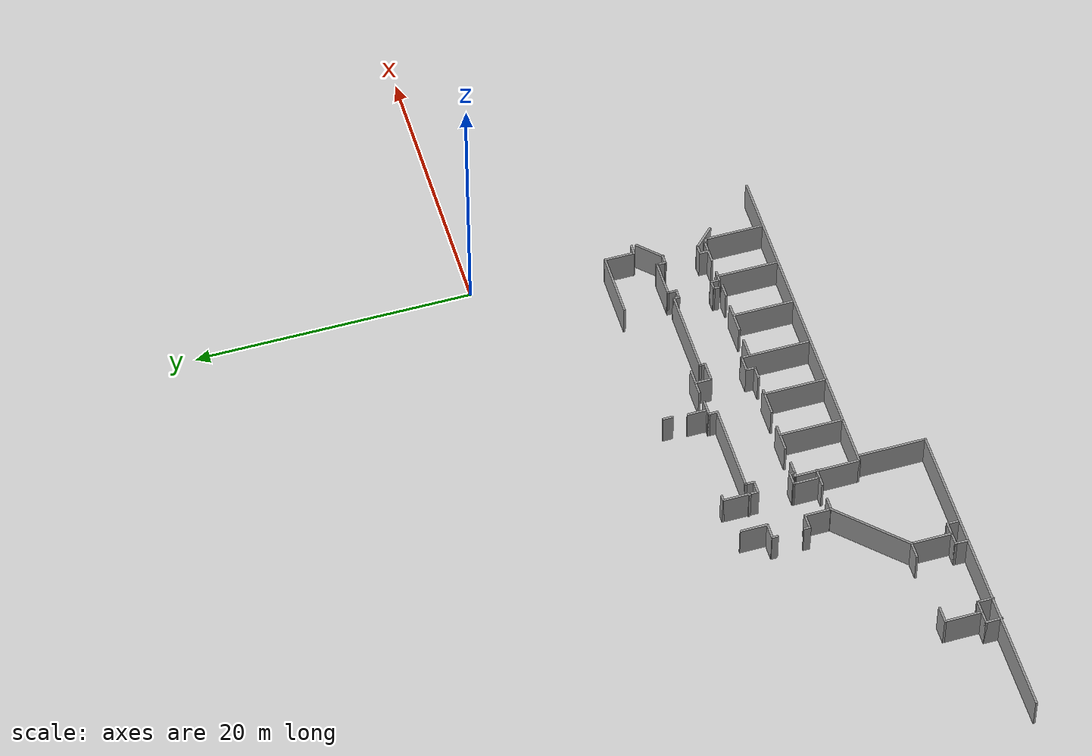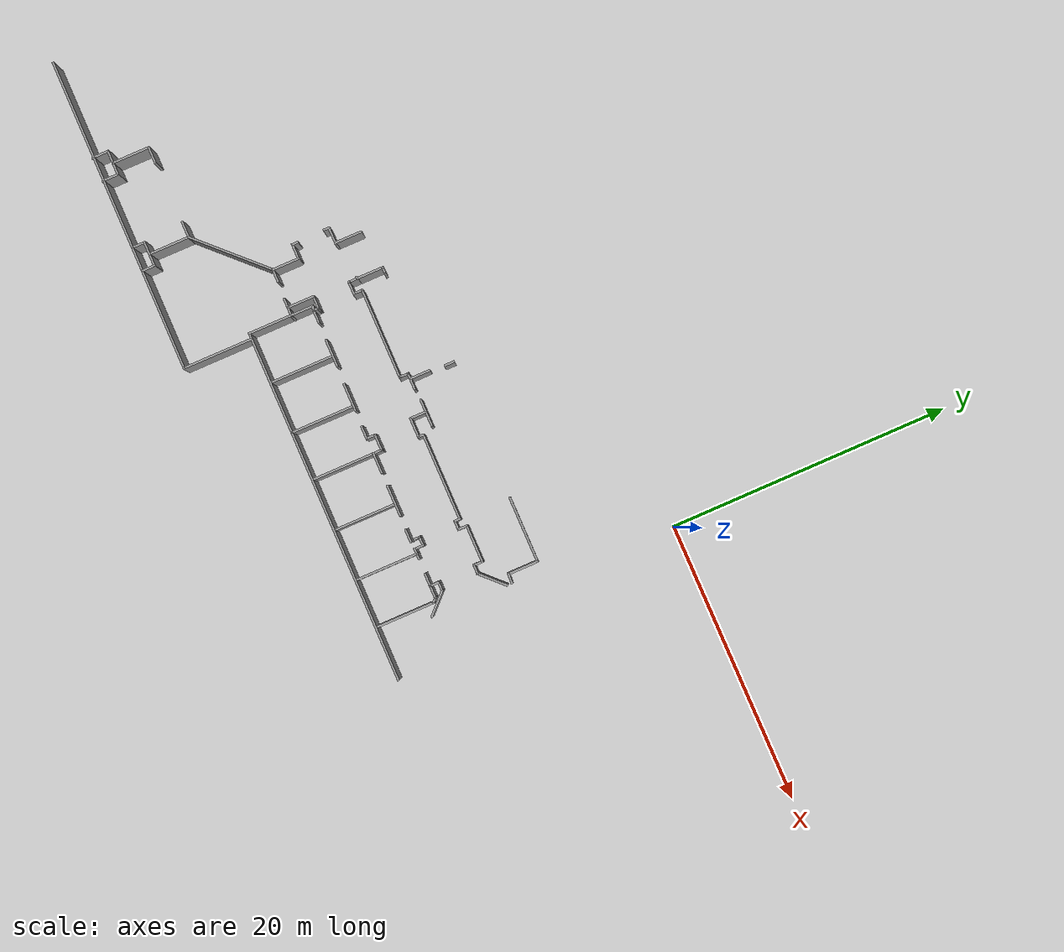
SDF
<sdf version="1.6">
 <world name="default">
  <model name="ground_plane">
   <static>1</static>
   <link name="link">
    <collision name="collision">
     <geometry><plane><normal>0 0 1</normal><size>200 100</size></plane></geometry>
     <surface><friction><ode><mu>100</mu><mu2>50</mu2></ode></friction></surface>
    </collision>
    <visual name="visual">
     <cast_shadows>0</cast_shadows>
     <geometry><plane><normal>0 0 1</normal><size>200 100</size></plane></geometry>
     <material>
      <script><uri>file://media/materials/scripts/gazebo.material</uri><name>Gazebo/Grey</name></script>
     </material>
    </visual>
   </link>
  </model>
  <model name="LuterFloorPlan">
   <pose>-8.27259 7.62647 0 0 -0 0</pose>
   <link name="Wall_112">
    <collision name="Wall_112_Collision">
     <geometry><box><size>22.5 0.15 2.5</size></box></geometry>
     <pose>0 0 1.25 0 -0 0</pose>
    </collision>
    <visual name="Wall_112_Visual">
     <pose>0 0 1.25 0 -0 0</pose>
     <geometry><box><size>22.5 0.15 2.5</size></box></geometry>
     <material>
      <script><uri>file://media/materials/scripts/gazebo.material</uri><name>Gazebo/Grey</name></script>
      <ambient>1 1 1 1</ambient>
     </material>
    </visual>
    <pose>-25.6345 -33.5083 0 0 -0 0</pose>
   </link>
   <link name="Wall_114">
    <collision name="Wall_114_Collision">
     <geometry><box><size>5 0.15 2.5</size></box></geometry>
     <pose>0 0 1.25 0 -0 0</pose>
    </collision>
    <visual name="Wall_114_Visual">
     <pose>0 0 1.25 0 -0 0</pose>
     <geometry><box><size>5 0.15 2.5</size></box></geometry>
     <material>
      <script><uri>file://media/materials/scripts/gazebo.material</uri><name>Gazebo/Grey</name></script>
      <ambient>1 1 1 1</ambient>
     </material>
    </visual>
    <pose>-14.4595 -31.0833 0 0 -0 1.5708</pose>
   </link>
   <link name="Wall_256">
    <collision name="Wall_256_Collision">
     <geometry><box><size>2.75 0.15 2.5</size></box></geometry>
     <pose>0 0 1.25 0 -0 0</pose>
    </collision>
    <visual name="Wall_256_Visual">
     <pose>0 0 1.25 0 -0 0</pose>
     <geometry><box><size>2.75 0.15 2.5</size></box></geometry>
     <material>
      <script><uri>file://media/materials/scripts/gazebo.material</uri><name>Gazebo/Grey</name></script>
      <ambient>1 1 1 1</ambient>
     </material>
    </visual>
    <pose>-29.0172 -31.1714 0 0 0 -1.5708</pose>
   </link>
   <link name="Wall_257">
    <collision name="Wall_257_Collision">
     <geometry><box><size>1 0.15 2.5</size></box></geometry>
     <pose>0 0 1.25 0 -0 0</pose>
    </collision>
    <visual name="Wall_257_Visual">
     <pose>0 0 1.25 0 -0 0</pose>
     <geometry><box><size>1 0.15 2.5</size></box></geometry>
     <material>
      <script><uri>file://media/materials/scripts/gazebo.material</uri><name>Gazebo/Grey</name></script>
      <ambient>1 1 1 1</ambient>
     </material>
    </visual>
    <pose>-29.4422 -32.4714 0 0 -0 3.14159</pose>
   </link>
   <link name="Wall_258">
    <collision name="Wall_258_Collision">
     <geometry><box><size>1.25 0.15 2.5</size></box></geometry>
     <pose>0 0 1.25 0 -0 0</pose>
    </collision>
    <visual name="Wall_258_Visual">
     <pose>0 0 1.25 0 -0 0</pose>
     <geometry><box><size>1.25 0.15 2.5</size></box></geometry>
     <material>
      <script><uri>file://media/materials/scripts/gazebo.material</uri><name>Gazebo/Grey</name></script>
      <ambient>1 1 1 1</ambient>
     </material>
    </visual>
    <pose>-29.8672 -33.0214 0 0 0 -1.5708</pose>
   </link>
   <link name="Wall_260">
    <collision name="Wall_260_Collision">
     <geometry><box><size>1 0.15 2.5</size></box></geometry>
     <pose>0 0 1.25 0 -0 0</pose>
    </collision>
    <visual name="Wall_260_Visual">
     <pose>0 0 1.25 0 -0 0</pose>
     <geometry><box><size>1 0.15 2.5</size></box></geometry>
     <material>
      <script><uri>file://media/materials/scripts/gazebo.material</uri><name>Gazebo/Grey</name></script>
      <ambient>1 1 1 1</ambient>
     </material>
    </visual>
    <pose>-28.5922 -32.4714 0 0 -0 0</pose>
   </link>
   <link name="Wall_261">
    <collision name="Wall_261_Collision">
     <geometry><box><size>1.25 0.15 2.5</size></box></geometry>
     <pose>0 0 1.25 0 -0 0</pose>
    </collision>
    <visual name="Wall_261_Visual">
     <pose>0 0 1.25 0 -0 0</pose>
     <geometry><box><size>1.25 0.15 2.5</size></box></geometry>
     <material>
      <script><uri>file://media/materials/scripts/gazebo.material</uri><name>Gazebo/Grey</name></script>
      <ambient>1 1 1 1</ambient>
     </material>
    </visual>
    <pose>-28.1672 -33.0214 0 0 0 -1.5708</pose>
   </link>
   <link name="Wall_295">
    <collision name="Wall_295_Collision">
     <geometry><box><size>2 0.15 2.5</size></box></geometry>
     <pose>0 0 1.25 0 -0 0</pose>
    </collision>
    <visual name="Wall_295_Visual">
     <pose>0 0 1.25 0 -0 0</pose>
     <geometry><box><size>2 0.15 2.5</size></box></geometry>
     <material>
      <script><uri>file://media/materials/scripts/gazebo.material</uri><name>Gazebo/Grey</name></script>
      <ambient>1 1 1 1</ambient>
     </material>
    </visual>
    <pose>-18.1531 -20.016 0 0 0 -1.5708</pose>
   </link>
   <link name="Wall_296">
    <collision name="Wall_296_Collision">
     <geometry><box><size>1.25 0.15 2.5</size></box></geometry>
     <pose>0 0 1.25 0 -0 0</pose>
    </collision>
    <visual name="Wall_296_Visual">
     <pose>0 0 1.25 0 -0 0</pose>
     <geometry><box><size>1.25 0.15 2.5</size></box></geometry>
     <material>
      <script><uri>file://media/materials/scripts/gazebo.material</uri><name>Gazebo/Grey</name></script>
      <ambient>1 1 1 1</ambient>
     </material>
    </visual>
    <pose>-18.7031 -20.941 0 0 -0 3.14159</pose>
   </link>
   <link name="Wall_297">
    <collision name="Wall_297_Collision">
     <geometry><box><size>0.5 0.15 2.5</size></box></geometry>
     <pose>0 0 1.25 0 -0 0</pose>
    </collision>
    <visual name="Wall_297_Visual">
     <pose>0 0 1.25 0 -0 0</pose>
     <geometry><box><size>0.5 0.15 2.5</size></box></geometry>
     <material>
      <script><uri>file://media/materials/scripts/gazebo.material</uri><name>Gazebo/Grey</name></script>
      <ambient>1 1 1 1</ambient>
     </material>
    </visual>
    <pose>-19.2531 -21.116 0 0 0 -1.5708</pose>
   </link>
   <link name="Wall_323">
    <collision name="Wall_323_Collision">
     <geometry><box><size>0.5 0.15 2.5</size></box></geometry>
     <pose>0 0 1.25 0 -0 0</pose>
    </collision>
    <visual name="Wall_323_Visual">
     <pose>0 0 1.25 0 -0 0</pose>
     <geometry><box><size>0.5 0.15 2.5</size></box></geometry>
     <material>
      <script><uri>file://media/materials/scripts/gazebo.material</uri><name>Gazebo/Grey</name></script>
      <ambient>1 1 1 1</ambient>
     </material>
    </visual>
    <pose>-15.2055 -18.7088 0 0 -0 3.14159</pose>
   </link>
   <link name="Wall_324">
    <collision name="Wall_324_Collision">
     <geometry><box><size>2 0.15 2.5</size></box></geometry>
     <pose>0 0 1.25 0 -0 0</pose>
    </collision>
    <visual name="Wall_324_Visual">
     <pose>0 0 1.25 0 -0 0</pose>
     <geometry><box><size>2 0.15 2.5</size></box></geometry>
     <material>
      <script><uri>file://media/materials/scripts/gazebo.material</uri><name>Gazebo/Grey</name></script>
      <ambient>1 1 1 1</ambient>
     </material>
    </visual>
    <pose>-15.3805 -19.6338 0 0 0 -1.5708</pose>
   </link>
   <link name="Wall_325">
    <collision name="Wall_325_Collision">
     <geometry><box><size>0.25 0.15 2.5</size></box></geometry>
     <pose>0 0 1.25 0 -0 0</pose>
    </collision>
    <visual name="Wall_325_Visual">
     <pose>0 0 1.25 0 -0 0</pose>
     <geometry><box><size>0.25 0.15 2.5</size></box></geometry>
     <material>
      <script><uri>file://media/materials/scripts/gazebo.material</uri><name>Gazebo/Grey</name></script>
      <ambient>1 1 1 1</ambient>
     </material>
    </visual>
    <pose>-15.4305 -20.5588 0 0 -0 3.14159</pose>
   </link>
   <link name="Wall_330">
    <collision name="Wall_330_Collision">
     <geometry><box><size>0.75 0.15 2.5</size></box></geometry>
     <pose>0 0 1.25 0 -0 0</pose>
    </collision>
    <visual name="Wall_330_Visual">
     <pose>0 0 1.25 0 -0 0</pose>
     <geometry><box><size>0.75 0.15 2.5</size></box></geometry>
     <material>
      <script><uri>file://media/materials/scripts/gazebo.material</uri><name>Gazebo/Grey</name></script>
      <ambient>1 1 1 1</ambient>
     </material>
    </visual>
    <pose>-15.3805 -20.8588 0 0 0 -1.5708</pose>
   </link>
   <link name="Wall_331">
    <collision name="Wall_331_Collision">
     <geometry><box><size>1 0.15 2.5</size></box></geometry>
     <pose>0 0 1.25 0 -0 0</pose>
    </collision>
    <visual name="Wall_331_Visual">
     <pose>0 0 1.25 0 -0 0</pose>
     <geometry><box><size>1 0.15 2.5</size></box></geometry>
     <material>
      <script><uri>file://media/materials/scripts/gazebo.material</uri><name>Gazebo/Grey</name></script>
      <ambient>1 1 1 1</ambient>
     </material>
    </visual>
    <pose>-14.9555 -21.1588 0 0 -0 0</pose>
   </link>
   <link name="Wall_332">
    <collision name="Wall_332_Collision">
     <geometry><box><size>0.75 0.15 2.5</size></box></geometry>
     <pose>0 0 1.25 0 -0 0</pose>
    </collision>
    <visual name="Wall_332_Visual">
     <pose>0 0 1.25 0 -0 0</pose>
     <geometry><box><size>0.75 0.15 2.5</size></box></geometry>
     <material>
      <script><uri>file://media/materials/scripts/gazebo.material</uri><name>Gazebo/Grey</name></script>
      <ambient>1 1 1 1</ambient>
     </material>
    </visual>
    <pose>-14.5305 -20.8588 0 0 -0 1.5708</pose>
   </link>
   <link name="Wall_334">
    <collision name="Wall_334_Collision">
     <geometry><box><size>1.25 0.15 2.5</size></box></geometry>
     <pose>0 0 1.25 0 -0 0</pose>
    </collision>
    <visual name="Wall_334_Visual">
     <pose>0 0 1.25 0 -0 0</pose>
     <geometry><box><size>1.25 0.15 2.5</size></box></geometry>
     <material>
      <script><uri>file://media/materials/scripts/gazebo.material</uri><name>Gazebo/Grey</name></script>
      <ambient>1 1 1 1</ambient>
     </material>
    </visual>
    <pose>-28.4672 -29.8714 0 0 -0 0</pose>
   </link>
   <link name="Wall_336">
    <collision name="Wall_336_Collision">
     <geometry><box><size>1.25 0.15 2.5</size></box></geometry>
     <pose>0 0 1.25 0 -0 0</pose>
    </collision>
    <visual name="Wall_336_Visual">
     <pose>0 0 1.25 0 -0 0</pose>
     <geometry><box><size>1.25 0.15 2.5</size></box></geometry>
     <material>
      <script><uri>file://media/materials/scripts/gazebo.material</uri><name>Gazebo/Grey</name></script>
      <ambient>1 1 1 1</ambient>
     </material>
    </visual>
    <pose>-22.9579 -29.7826 0 0 -0 0</pose>
   </link>
   <link name="Wall_337">
    <collision name="Wall_337_Collision">
     <geometry><box><size>3 0.15 2.5</size></box></geometry>
     <pose>0 0 1.25 0 -0 0</pose>
    </collision>
    <visual name="Wall_337_Visual">
     <pose>0 0 1.25 0 -0 0</pose>
     <geometry><box><size>3 0.15 2.5</size></box></geometry>
     <material>
      <script><uri>file://media/materials/scripts/gazebo.material</uri><name>Gazebo/Grey</name></script>
      <ambient>1 1 1 1</ambient>
     </material>
    </visual>
    <pose>-22.4079 -31.2076 0 0 0 -1.5708</pose>
   </link>
   <link name="Wall_338">
    <collision name="Wall_338_Collision">
     <geometry><box><size>1 0.15 2.5</size></box></geometry>
     <pose>0 0 1.25 0 -0 0</pose>
    </collision>
    <visual name="Wall_338_Visual">
     <pose>0 0 1.25 0 -0 0</pose>
     <geometry><box><size>1 0.15 2.5</size></box></geometry>
     <material>
      <script><uri>file://media/materials/scripts/gazebo.material</uri><name>Gazebo/Grey</name></script>
      <ambient>1 1 1 1</ambient>
     </material>
    </visual>
    <pose>-22.8329 -32.6326 0 0 -0 3.14159</pose>
   </link>
   <link name="Wall_339">
    <collision name="Wall_339_Collision">
     <geometry><box><size>1 0.15 2.5</size></box></geometry>
     <pose>0 0 1.25 0 -0 0</pose>
    </collision>
    <visual name="Wall_339_Visual">
     <pose>0 0 1.25 0 -0 0</pose>
     <geometry><box><size>1 0.15 2.5</size></box></geometry>
     <material>
      <script><uri>file://media/materials/scripts/gazebo.material</uri><name>Gazebo/Grey</name></script>
      <ambient>1 1 1 1</ambient>
     </material>
    </visual>
    <pose>-23.2579 -33.0576 0 0 0 -1.5708</pose>
   </link>
   <link name="Wall_341">
    <collision name="Wall_341_Collision">
     <geometry><box><size>1 0.15 2.5</size></box></geometry>
     <pose>0 0 1.25 0 -0 0</pose>
    </collision>
    <visual name="Wall_341_Visual">
     <pose>0 0 1.25 0 -0 0</pose>
     <geometry><box><size>1 0.15 2.5</size></box></geometry>
     <material>
      <script><uri>file://media/materials/scripts/gazebo.material</uri><name>Gazebo/Grey</name></script>
      <ambient>1 1 1 1</ambient>
     </material>
    </visual>
    <pose>-21.9829 -32.6326 0 0 -0 0</pose>
   </link>
   <link name="Wall_342">
    <collision name="Wall_342_Collision">
     <geometry><box><size>1 0.15 2.5</size></box></geometry>
     <pose>0 0 1.25 0 -0 0</pose>
    </collision>
    <visual name="Wall_342_Visual">
     <pose>0 0 1.25 0 -0 0</pose>
     <geometry><box><size>1 0.15 2.5</size></box></geometry>
     <material>
      <script><uri>file://media/materials/scripts/gazebo.material</uri><name>Gazebo/Grey</name></script>
      <ambient>1 1 1 1</ambient>
     </material>
    </visual>
    <pose>-21.5579 -33.0576 0 0 0 -1.5708</pose>
   </link>
   <link name="Wall_344">
    <collision name="Wall_344_Collision">
     <geometry><box><size>6.20195 0.15 2.5</size></box></geometry>
     <pose>0 0 1.25 0 -0 0</pose>
    </collision>
    <visual name="Wall_344_Visual">
     <pose>0 0 1.25 0 -0 0</pose>
     <geometry><box><size>6.20195 0.15 2.5</size></box></geometry>
     <material>
      <script><uri>file://media/materials/scripts/gazebo.material</uri><name>Gazebo/Grey</name></script>
      <ambient>1 1 1 1</ambient>
     </material>
    </visual>
    <pose>-20.2853 -27.626 0 0 -0 0.793369</pose>
   </link>
   <link name="Wall_345">
    <collision name="Wall_345_Collision">
     <geometry><box><size>2 0.15 2.5</size></box></geometry>
     <pose>0 0 1.25 0 -0 0</pose>
    </collision>
    <visual name="Wall_345_Visual">
     <pose>0 0 1.25 0 -0 0</pose>
     <geometry><box><size>2 0.15 2.5</size></box></geometry>
     <material>
      <script><uri>file://media/materials/scripts/gazebo.material</uri><name>Gazebo/Grey</name></script>
      <ambient>1 1 1 1</ambient>
     </material>
    </visual>
    <pose>-18.1627 -24.5557 0 0 -0 1.5708</pose>
   </link>
   <link name="Wall_346">
    <collision name="Wall_346_Collision">
     <geometry><box><size>1.18178 0.15 2.5</size></box></geometry>
     <pose>0 0 1.25 0 -0 0</pose>
    </collision>
    <visual name="Wall_346_Visual">
     <pose>0 0 1.25 0 -0 0</pose>
     <geometry><box><size>1.18178 0.15 2.5</size></box></geometry>
     <material>
      <script><uri>file://media/materials/scripts/gazebo.material</uri><name>Gazebo/Grey</name></script>
      <ambient>1 1 1 1</ambient>
     </material>
    </visual>
    <pose>-18.6786 -23.6193 0 0 -0 3.14159</pose>
   </link>
   <link name="Wall_566">
    <collision name="Wall_566_Collision">
     <geometry><box><size>0.5 0.15 2.5</size></box></geometry>
     <pose>0 0 1.25 0 -0 0</pose>
    </collision>
    <visual name="Wall_566_Visual">
     <pose>0 0 1.25 0 -0 0</pose>
     <geometry><box><size>0.5 0.15 2.5</size></box></geometry>
     <material>
      <script><uri>file://media/materials/scripts/gazebo.material</uri><name>Gazebo/Grey</name></script>
      <ambient>1 1 1 1</ambient>
     </material>
    </visual>
    <pose>-19.1945 -23.4443 0 0 -0 1.5708</pose>
   </link>
   <link name="Wall_568">
    <collision name="Wall_568_Collision">
     <geometry><box><size>1 0.15 2.5</size></box></geometry>
     <pose>0 0 1.25 0 -0 0</pose>
    </collision>
    <visual name="Wall_568_Visual">
     <pose>0 0 1.25 0 -0 0</pose>
     <geometry><box><size>1 0.15 2.5</size></box></geometry>
     <material>
      <script><uri>file://media/materials/scripts/gazebo.material</uri><name>Gazebo/Grey</name></script>
      <ambient>1 1 1 1</ambient>
     </material>
    </visual>
    <pose>-17.7377 -25.4807 0 0 -0 0</pose>
   </link>
   <link name="Wall_570">
    <collision name="Wall_570_Collision">
     <geometry><box><size>0.75 0.15 2.5</size></box></geometry>
     <pose>0 0 1.25 0 -0 0</pose>
    </collision>
    <visual name="Wall_570_Visual">
     <pose>0 0 1.25 0 -0 0</pose>
     <geometry><box><size>0.75 0.15 2.5</size></box></geometry>
     <material>
      <script><uri>file://media/materials/scripts/gazebo.material</uri><name>Gazebo/Grey</name></script>
      <ambient>1 1 1 1</ambient>
     </material>
    </visual>
    <pose>-15.73 -25.5623 0 0 -0 0</pose>
   </link>
   <link name="Wall_571">
    <collision name="Wall_571_Collision">
     <geometry><box><size>2 0.15 2.5</size></box></geometry>
     <pose>0 0 1.25 0 -0 0</pose>
    </collision>
    <visual name="Wall_571_Visual">
     <pose>0 0 1.25 0 -0 0</pose>
     <geometry><box><size>2 0.15 2.5</size></box></geometry>
     <material>
      <script><uri>file://media/materials/scripts/gazebo.material</uri><name>Gazebo/Grey</name></script>
      <ambient>1 1 1 1</ambient>
     </material>
    </visual>
    <pose>-15.43 -24.6373 0 0 -0 1.5708</pose>
   </link>
   <link name="Wall_572">
    <collision name="Wall_572_Collision">
     <geometry><box><size>1 0.15 2.5</size></box></geometry>
     <pose>0 0 1.25 0 -0 0</pose>
    </collision>
    <visual name="Wall_572_Visual">
     <pose>0 0 1.25 0 -0 0</pose>
     <geometry><box><size>1 0.15 2.5</size></box></geometry>
     <material>
      <script><uri>file://media/materials/scripts/gazebo.material</uri><name>Gazebo/Grey</name></script>
      <ambient>1 1 1 1</ambient>
     </material>
    </visual>
    <pose>-15.005 -23.7123 0 0 -0 0</pose>
   </link>
   <link name="Wall_573">
    <collision name="Wall_573_Collision">
     <geometry><box><size>0.5 0.15 2.5</size></box></geometry>
     <pose>0 0 1.25 0 -0 0</pose>
    </collision>
    <visual name="Wall_573_Visual">
     <pose>0 0 1.25 0 -0 0</pose>
     <geometry><box><size>0.5 0.15 2.5</size></box></geometry>
     <material>
      <script><uri>file://media/materials/scripts/gazebo.material</uri><name>Gazebo/Grey</name></script>
      <ambient>1 1 1 1</ambient>
     </material>
    </visual>
    <pose>-14.58 -23.8873 0 0 0 -1.5708</pose>
   </link>
   <link name="Wall_574">
    <collision name="Wall_574_Collision">
     <geometry><box><size>1 0.15 2.5</size></box></geometry>
     <pose>0 0 1.25 0 -0 0</pose>
    </collision>
    <visual name="Wall_574_Visual">
     <pose>0 0 1.25 0 -0 0</pose>
     <geometry><box><size>1 0.15 2.5</size></box></geometry>
     <material>
      <script><uri>file://media/materials/scripts/gazebo.material</uri><name>Gazebo/Grey</name></script>
      <ambient>1 1 1 1</ambient>
     </material>
    </visual>
    <pose>-14.155 -24.0623 0 0 -0 0</pose>
   </link>
   <link name="Wall_576">
    <collision name="Wall_576_Collision">
     <geometry><box><size>4.75 0.15 2.5</size></box></geometry>
     <pose>0 0 1.25 0 -0 0</pose>
    </collision>
    <visual name="Wall_576_Visual">
     <pose>0 0 1.25 0 -0 0</pose>
     <geometry><box><size>4.75 0.15 2.5</size></box></geometry>
     <material>
      <script><uri>file://media/materials/scripts/gazebo.material</uri><name>Gazebo/Grey</name></script>
      <ambient>1 1 1 1</ambient>
     </material>
    </visual>
    <pose>-14.8588 -26.3096 0 0 -0 1.5708</pose>
   </link>
   <link name="Wall_577">
    <collision name="Wall_577_Collision">
     <geometry><box><size>0.433777 0.15 2.5</size></box></geometry>
     <pose>0 0 1.25 0 -0 0</pose>
    </collision>
    <visual name="Wall_577_Visual">
     <pose>0 0 1.25 0 -0 0</pose>
     <geometry><box><size>0.433777 0.15 2.5</size></box></geometry>
     <material>
      <script><uri>file://media/materials/scripts/gazebo.material</uri><name>Gazebo/Grey</name></script>
      <ambient>1 1 1 1</ambient>
     </material>
    </visual>
    <pose>-14.7194 -24.0359 0 0 0 -0.186819</pose>
   </link>
   <link name="Wall_579">
    <collision name="Wall_579_Collision">
     <geometry><box><size>0.75 0.15 2.5</size></box></geometry>
     <pose>0 0 1.25 0 -0 0</pose>
    </collision>
    <visual name="Wall_579_Visual">
     <pose>0 0 1.25 0 -0 0</pose>
     <geometry><box><size>0.75 0.15 2.5</size></box></geometry>
     <material>
      <script><uri>file://media/materials/scripts/gazebo.material</uri><name>Gazebo/Grey</name></script>
      <ambient>1 1 1 1</ambient>
     </material>
    </visual>
    <pose>-15.13 -25.5623 0 0 -0 0</pose>
   </link>
   <link name="Wall_589">
    <collision name="Wall_589_Collision">
     <geometry><box><size>25.25 0.15 2.5</size></box></geometry>
     <pose>0 0 1.25 0 -0 0</pose>
    </collision>
    <visual name="Wall_589_Visual">
     <pose>0 0 1.25 0 -0 0</pose>
     <geometry><box><size>25.25 0.15 2.5</size></box></geometry>
     <material>
      <script><uri>file://media/materials/scripts/gazebo.material</uri><name>Gazebo/Grey</name></script>
      <ambient>1 1 1 1</ambient>
     </material>
    </visual>
    <pose>-2.3088 -28.6096 0 0 -0 0</pose>
   </link>
   <link name="Wall_591">
    <collision name="Wall_591_Collision">
     <geometry><box><size>2 0.15 2.5</size></box></geometry>
     <pose>0 0 1.25 0 -0 0</pose>
    </collision>
    <visual name="Wall_591_Visual">
     <pose>0 0 1.25 0 -0 0</pose>
     <geometry><box><size>2 0.15 2.5</size></box></geometry>
     <material>
      <script><uri>file://media/materials/scripts/gazebo.material</uri><name>Gazebo/Grey</name></script>
      <ambient>1 1 1 1</ambient>
     </material>
    </visual>
    <pose>-11.4834 -24.09 0 0 -0 0</pose>
   </link>
   <link name="Wall_593">
    <collision name="Wall_593_Collision">
     <geometry><box><size>2 0.15 2.5</size></box></geometry>
     <pose>0 0 1.25 0 -0 0</pose>
    </collision>
    <visual name="Wall_593_Visual">
     <pose>0 0 1.25 0 -0 0</pose>
     <geometry><box><size>2 0.15 2.5</size></box></geometry>
     <material>
      <script><uri>file://media/materials/scripts/gazebo.material</uri><name>Gazebo/Grey</name></script>
      <ambient>1 1 1 1</ambient>
     </material>
    </visual>
    <pose>-8.27731 -24.1505 0 0 -0 0</pose>
   </link>
   <link name="Wall_596">
    <collision name="Wall_596_Collision">
     <geometry><box><size>4.5 0.15 2.5</size></box></geometry>
     <pose>0 0 1.25 0 -0 0</pose>
    </collision>
    <visual name="Wall_596_Visual">
     <pose>0 0 1.25 0 -0 0</pose>
     <geometry><box><size>4.5 0.15 2.5</size></box></geometry>
     <material>
      <script><uri>file://media/materials/scripts/gazebo.material</uri><name>Gazebo/Grey</name></script>
      <ambient>1 1 1 1</ambient>
     </material>
    </visual>
    <pose>-11.2628 -26.3614 0 0 -0 1.5708</pose>
   </link>
   <link name="Wall_598">
    <collision name="Wall_598_Collision">
     <geometry><box><size>4.5 0.15 2.5</size></box></geometry>
     <pose>0 0 1.25 0 -0 0</pose>
    </collision>
    <visual name="Wall_598_Visual">
     <pose>0 0 1.25 0 -0 0</pose>
     <geometry><box><size>4.5 0.15 2.5</size></box></geometry>
     <material>
      <script><uri>file://media/materials/scripts/gazebo.material</uri><name>Gazebo/Grey</name></script>
      <ambient>1 1 1 1</ambient>
     </material>
    </visual>
    <pose>-7.64075 -26.4007 0 0 -0 1.5708</pose>
   </link>
   <link name="Wall_600">
    <collision name="Wall_600_Collision">
     <geometry><box><size>1 0.15 2.5</size></box></geometry>
     <pose>0 0 1.25 0 -0 0</pose>
    </collision>
    <visual name="Wall_600_Visual">
     <pose>0 0 1.25 0 -0 0</pose>
     <geometry><box><size>1 0.15 2.5</size></box></geometry>
     <material>
      <script><uri>file://media/materials/scripts/gazebo.material</uri><name>Gazebo/Grey</name></script>
      <ambient>1 1 1 1</ambient>
     </material>
    </visual>
    <pose>-5.72508 -24.1952 0 0 -0 0</pose>
   </link>
   <link name="Wall_601">
    <collision name="Wall_601_Collision">
     <geometry><box><size>0.75 0.15 2.5</size></box></geometry>
     <pose>0 0 1.25 0 -0 0</pose>
    </collision>
    <visual name="Wall_601_Visual">
     <pose>0 0 1.25 0 -0 0</pose>
     <geometry><box><size>0.75 0.15 2.5</size></box></geometry>
     <material>
      <script><uri>file://media/materials/scripts/gazebo.material</uri><name>Gazebo/Grey</name></script>
      <ambient>1 1 1 1</ambient>
     </material>
    </visual>
    <pose>-5.30008 -23.8952 0 0 -0 1.5708</pose>
   </link>
   <link name="Wall_602">
    <collision name="Wall_602_Collision">
     <geometry><box><size>1.25 0.15 2.5</size></box></geometry>
     <pose>0 0 1.25 0 -0 0</pose>
    </collision>
    <visual name="Wall_602_Visual">
     <pose>0 0 1.25 0 -0 0</pose>
     <geometry><box><size>1.25 0.15 2.5</size></box></geometry>
     <material>
      <script><uri>file://media/materials/scripts/gazebo.material</uri><name>Gazebo/Grey</name></script>
      <ambient>1 1 1 1</ambient>
     </material>
    </visual>
    <pose>-4.75008 -23.5952 0 0 -0 0</pose>
   </link>
   <link name="Wall_603">
    <collision name="Wall_603_Collision">
     <geometry><box><size>5 0.15 2.5</size></box></geometry>
     <pose>0 0 1.25 0 -0 0</pose>
    </collision>
    <visual name="Wall_603_Visual">
     <pose>0 0 1.25 0 -0 0</pose>
     <geometry><box><size>5 0.15 2.5</size></box></geometry>
     <material>
      <script><uri>file://media/materials/scripts/gazebo.material</uri><name>Gazebo/Grey</name></script>
      <ambient>1 1 1 1</ambient>
     </material>
    </visual>
    <pose>-4.20008 -26.0202 0 0 0 -1.5708</pose>
   </link>
   <link name="Wall_605">
    <collision name="Wall_605_Collision">
     <geometry><box><size>1.5 0.15 2.5</size></box></geometry>
     <pose>0 0 1.25 0 -0 0</pose>
    </collision>
    <visual name="Wall_605_Visual">
     <pose>0 0 1.25 0 -0 0</pose>
     <geometry><box><size>1.5 0.15 2.5</size></box></geometry>
     <material>
      <script><uri>file://media/materials/scripts/gazebo.material</uri><name>Gazebo/Grey</name></script>
      <ambient>1 1 1 1</ambient>
     </material>
    </visual>
    <pose>-3.51367 -24.1821 0 0 -0 0</pose>
   </link>
   <link name="Wall_607">
    <collision name="Wall_607_Collision">
     <geometry><box><size>2.25 0.15 2.5</size></box></geometry>
     <pose>0 0 1.25 0 -0 0</pose>
    </collision>
    <visual name="Wall_607_Visual">
     <pose>0 0 1.25 0 -0 0</pose>
     <geometry><box><size>2.25 0.15 2.5</size></box></geometry>
     <material>
      <script><uri>file://media/materials/scripts/gazebo.material</uri><name>Gazebo/Grey</name></script>
      <ambient>1 1 1 1</ambient>
     </material>
    </visual>
    <pose>-0.77518 -24.1821 0 0 -0 0</pose>
   </link>
   <link name="Wall_609">
    <collision name="Wall_609_Collision">
     <geometry><box><size>4.5 0.15 2.5</size></box></geometry>
     <pose>0 0 1.25 0 -0 0</pose>
    </collision>
    <visual name="Wall_609_Visual">
     <pose>0 0 1.25 0 -0 0</pose>
     <geometry><box><size>4.5 0.15 2.5</size></box></geometry>
     <material>
      <script><uri>file://media/materials/scripts/gazebo.material</uri><name>Gazebo/Grey</name></script>
      <ambient>1 1 1 1</ambient>
     </material>
    </visual>
    <pose>-0.540443 -26.4094 0 0 0 -1.5708</pose>
   </link>
   <link name="Wall_617">
    <collision name="Wall_617_Collision">
     <geometry><box><size>2 0.15 2.5</size></box></geometry>
     <pose>0 0 1.25 0 -0 0</pose>
    </collision>
    <visual name="Wall_617_Visual">
     <pose>0 0 1.25 0 -0 0</pose>
     <geometry><box><size>2 0.15 2.5</size></box></geometry>
     <material>
      <script><uri>file://media/materials/scripts/gazebo.material</uri><name>Gazebo/Grey</name></script>
      <ambient>1 1 1 1</ambient>
     </material>
    </visual>
    <pose>-5.30442 -19.8791 0 0 -0 3.14159</pose>
   </link>
   <link name="Wall_620">
    <collision name="Wall_620_Collision">
     <geometry><box><size>0.75 0.15 2.5</size></box></geometry>
     <pose>0 0 1.25 0 -0 0</pose>
    </collision>
    <visual name="Wall_620_Visual">
     <pose>0 0 1.25 0 -0 0</pose>
     <geometry><box><size>0.75 0.15 2.5</size></box></geometry>
     <material>
      <script><uri>file://media/materials/scripts/gazebo.material</uri><name>Gazebo/Grey</name></script>
      <ambient>1 1 1 1</ambient>
     </material>
    </visual>
    <pose>-7.69411 -17.1597 0 0 0 -1.5708</pose>
   </link>
   <link name="Wall_622">
    <collision name="Wall_622_Collision">
     <geometry><box><size>6.5 0.15 2.5</size></box></geometry>
     <pose>0 0 1.25 0 -0 0</pose>
    </collision>
    <visual name="Wall_622_Visual">
     <pose>0 0 1.25 0 -0 0</pose>
     <geometry><box><size>6.5 0.15 2.5</size></box></geometry>
     <material>
      <script><uri>file://media/materials/scripts/gazebo.material</uri><name>Gazebo/Grey</name></script>
      <ambient>1 1 1 1</ambient>
     </material>
    </visual>
    <pose>-11.3555 -20.5588 0 0 -0 0</pose>
   </link>
   <link name="Wall_623">
    <collision name="Wall_623_Collision">
     <geometry><box><size>0.75 0.15 2.5</size></box></geometry>
     <pose>0 0 1.25 0 -0 0</pose>
    </collision>
    <visual name="Wall_623_Visual">
     <pose>0 0 1.25 0 -0 0</pose>
     <geometry><box><size>0.75 0.15 2.5</size></box></geometry>
     <material>
      <script><uri>file://media/materials/scripts/gazebo.material</uri><name>Gazebo/Grey</name></script>
      <ambient>1 1 1 1</ambient>
     </material>
    </visual>
    <pose>-8.18048 -20.2588 0 0 -0 1.5708</pose>
   </link>
   <link name="Wall_624">
    <collision name="Wall_624_Collision">
     <geometry><box><size>1.25 0.15 2.5</size></box></geometry>
     <pose>0 0 1.25 0 -0 0</pose>
    </collision>
    <visual name="Wall_624_Visual">
     <pose>0 0 1.25 0 -0 0</pose>
     <geometry><box><size>1.25 0.15 2.5</size></box></geometry>
     <material>
      <script><uri>file://media/materials/scripts/gazebo.material</uri><name>Gazebo/Grey</name></script>
      <ambient>1 1 1 1</ambient>
     </material>
    </visual>
    <pose>-7.63048 -19.9588 0 0 -0 0</pose>
   </link>
   <link name="Wall_626">
    <collision name="Wall_626_Collision">
     <geometry><box><size>1.5 0.15 2.5</size></box></geometry>
     <pose>0 0 1.25 0 -0 0</pose>
    </collision>
    <visual name="Wall_626_Visual">
     <pose>0 0 1.25 0 -0 0</pose>
     <geometry><box><size>1.5 0.15 2.5</size></box></geometry>
     <material>
      <script><uri>file://media/materials/scripts/gazebo.material</uri><name>Gazebo/Grey</name></script>
      <ambient>1 1 1 1</ambient>
     </material>
    </visual>
    <pose>-7.80734 -19.2587 0 0 0 -1.5708</pose>
   </link>
   <link name="Wall_798">
    <collision name="Wall_798_Collision">
     <geometry><box><size>1.25 0.15 2.5</size></box></geometry>
     <pose>0 0 1.25 0 -0 0</pose>
    </collision>
    <visual name="Wall_798_Visual">
     <pose>0 0 1.25 0 -0 0</pose>
     <geometry><box><size>1.25 0.15 2.5</size></box></geometry>
     <material>
      <script><uri>file://media/materials/scripts/gazebo.material</uri><name>Gazebo/Grey</name></script>
      <ambient>1 1 1 1</ambient>
     </material>
    </visual>
    <pose>-5.36712 -20.4445 0 0 0 -1.5708</pose>
   </link>
   <link name="Wall_799">
    <collision name="Wall_799_Collision">
     <geometry><box><size>1.5 0.15 2.5</size></box></geometry>
     <pose>0 0 1.25 0 -0 0</pose>
    </collision>
    <visual name="Wall_799_Visual">
     <pose>0 0 1.25 0 -0 0</pose>
     <geometry><box><size>1.5 0.15 2.5</size></box></geometry>
     <material>
      <script><uri>file://media/materials/scripts/gazebo.material</uri><name>Gazebo/Grey</name></script>
      <ambient>1 1 1 1</ambient>
     </material>
    </visual>
    <pose>-4.69212 -20.9945 0 0 -0 0</pose>
   </link>
   <link name="Wall_800">
    <collision name="Wall_800_Collision">
     <geometry><box><size>0.5 0.15 2.5</size></box></geometry>
     <pose>0 0 1.25 0 -0 0</pose>
    </collision>
    <visual name="Wall_800_Visual">
     <pose>0 0 1.25 0 -0 0</pose>
     <geometry><box><size>0.5 0.15 2.5</size></box></geometry>
     <material>
      <script><uri>file://media/materials/scripts/gazebo.material</uri><name>Gazebo/Grey</name></script>
      <ambient>1 1 1 1</ambient>
     </material>
    </visual>
    <pose>-4.01712 -20.8195 0 0 -0 1.5708</pose>
   </link>
   <link name="Wall_801">
    <collision name="Wall_801_Collision">
     <geometry><box><size>6.25 0.15 2.5</size></box></geometry>
     <pose>0 0 1.25 0 -0 0</pose>
    </collision>
    <visual name="Wall_801_Visual">
     <pose>0 0 1.25 0 -0 0</pose>
     <geometry><box><size>6.25 0.15 2.5</size></box></geometry>
     <material>
      <script><uri>file://media/materials/scripts/gazebo.material</uri><name>Gazebo/Grey</name></script>
      <ambient>1 1 1 1</ambient>
     </material>
    </visual>
    <pose>-0.96712 -20.6445 0 0 -0 0</pose>
   </link>
   <link name="Wall_802">
    <collision name="Wall_802_Collision">
     <geometry><box><size>0.5 0.15 2.5</size></box></geometry>
     <pose>0 0 1.25 0 -0 0</pose>
    </collision>
    <visual name="Wall_802_Visual">
     <pose>0 0 1.25 0 -0 0</pose>
     <geometry><box><size>0.5 0.15 2.5</size></box></geometry>
     <material>
      <script><uri>file://media/materials/scripts/gazebo.material</uri><name>Gazebo/Grey</name></script>
      <ambient>1 1 1 1</ambient>
     </material>
    </visual>
    <pose>2.08288 -20.8195 0 0 0 -1.5708</pose>
   </link>
   <link name="Wall_803">
    <collision name="Wall_803_Collision">
     <geometry><box><size>0.75 0.15 2.5</size></box></geometry>
     <pose>0 0 1.25 0 -0 0</pose>
    </collision>
    <visual name="Wall_803_Visual">
     <pose>0 0 1.25 0 -0 0</pose>
     <geometry><box><size>0.75 0.15 2.5</size></box></geometry>
     <material>
      <script><uri>file://media/materials/scripts/gazebo.material</uri><name>Gazebo/Grey</name></script>
      <ambient>1 1 1 1</ambient>
     </material>
    </visual>
    <pose>2.38288 -20.9945 0 0 -0 0</pose>
   </link>
   <link name="Wall_804">
    <collision name="Wall_804_Collision">
     <geometry><box><size>0.75 0.15 2.5</size></box></geometry>
     <pose>0 0 1.25 0 -0 0</pose>
    </collision>
    <visual name="Wall_804_Visual">
     <pose>0 0 1.25 0 -0 0</pose>
     <geometry><box><size>0.75 0.15 2.5</size></box></geometry>
     <material>
      <script><uri>file://media/materials/scripts/gazebo.material</uri><name>Gazebo/Grey</name></script>
      <ambient>1 1 1 1</ambient>
     </material>
    </visual>
    <pose>2.68288 -20.6945 0 0 -0 1.5708</pose>
   </link>
   <link name="Wall_805">
    <collision name="Wall_805_Collision">
     <geometry><box><size>2.75 0.15 2.5</size></box></geometry>
     <pose>0 0 1.25 0 -0 0</pose>
    </collision>
    <visual name="Wall_805_Visual">
     <pose>0 0 1.25 0 -0 0</pose>
     <geometry><box><size>2.75 0.15 2.5</size></box></geometry>
     <material>
      <script><uri>file://media/materials/scripts/gazebo.material</uri><name>Gazebo/Grey</name></script>
      <ambient>1 1 1 1</ambient>
     </material>
    </visual>
    <pose>3.98288 -20.3945 0 0 -0 0</pose>
   </link>
   <link name="Wall_806">
    <collision name="Wall_806_Collision">
     <geometry><box><size>0.75 0.15 2.5</size></box></geometry>
     <pose>0 0 1.25 0 -0 0</pose>
    </collision>
    <visual name="Wall_806_Visual">
     <pose>0 0 1.25 0 -0 0</pose>
     <geometry><box><size>0.75 0.15 2.5</size></box></geometry>
     <material>
      <script><uri>file://media/materials/scripts/gazebo.material</uri><name>Gazebo/Grey</name></script>
      <ambient>1 1 1 1</ambient>
     </material>
    </visual>
    <pose>5.28288 -20.6945 0 0 0 -1.5708</pose>
   </link>
   <link name="Wall_807">
    <collision name="Wall_807_Collision">
     <geometry><box><size>0.75 0.15 2.5</size></box></geometry>
     <pose>0 0 1.25 0 -0 0</pose>
    </collision>
    <visual name="Wall_807_Visual">
     <pose>0 0 1.25 0 -0 0</pose>
     <geometry><box><size>0.75 0.15 2.5</size></box></geometry>
     <material>
      <script><uri>file://media/materials/scripts/gazebo.material</uri><name>Gazebo/Grey</name></script>
      <ambient>1 1 1 1</ambient>
     </material>
    </visual>
    <pose>5.58288 -20.9945 0 0 -0 0</pose>
   </link>
   <link name="Wall_808">
    <collision name="Wall_808_Collision">
     <geometry><box><size>2.25 0.15 2.5</size></box></geometry>
     <pose>0 0 1.25 0 -0 0</pose>
    </collision>
    <visual name="Wall_808_Visual">
     <pose>0 0 1.25 0 -0 0</pose>
     <geometry><box><size>2.25 0.15 2.5</size></box></geometry>
     <material>
      <script><uri>file://media/materials/scripts/gazebo.material</uri><name>Gazebo/Grey</name></script>
      <ambient>1 1 1 1</ambient>
     </material>
    </visual>
    <pose>6.62534 -20.252 0 0 -0 0.785398</pose>
   </link>
   <link name="Wall_813">
    <collision name="Wall_813_Collision">
     <geometry><box><size>4.75 0.15 2.5</size></box></geometry>
     <pose>0 0 1.25 0 -0 0</pose>
    </collision>
    <visual name="Wall_813_Visual">
     <pose>0 0 1.25 0 -0 0</pose>
     <geometry><box><size>4.75 0.15 2.5</size></box></geometry>
     <material>
      <script><uri>file://media/materials/scripts/gazebo.material</uri><name>Gazebo/Grey</name></script>
      <ambient>1 1 1 1</ambient>
     </material>
    </visual>
    <pose>4.42856 -17.0277 0 0 -0 0</pose>
   </link>
   <link name="Wall_814">
    <collision name="Wall_814_Collision">
     <geometry><box><size>2.25 0.15 2.5</size></box></geometry>
     <pose>0 0 1.25 0 -0 0</pose>
    </collision>
    <visual name="Wall_814_Visual">
     <pose>0 0 1.25 0 -0 0</pose>
     <geometry><box><size>2.25 0.15 2.5</size></box></geometry>
     <material>
      <script><uri>file://media/materials/scripts/gazebo.material</uri><name>Gazebo/Grey</name></script>
      <ambient>1 1 1 1</ambient>
     </material>
    </visual>
    <pose>6.72856 -18.0777 0 0 0 -1.5708</pose>
   </link>
   <link name="Wall_815">
    <collision name="Wall_815_Collision">
     <geometry><box><size>0.790032 0.15 2.5</size></box></geometry>
     <pose>0 0 1.25 0 -0 0</pose>
    </collision>
    <visual name="Wall_815_Visual">
     <pose>0 0 1.25 0 -0 0</pose>
     <geometry><box><size>0.790032 0.15 2.5</size></box></geometry>
     <material>
      <script><uri>file://media/materials/scripts/gazebo.material</uri><name>Gazebo/Grey</name></script>
      <ambient>1 1 1 1</ambient>
     </material>
    </visual>
    <pose>7.04819 -19.1436 0 0 0 -0.049778</pose>
   </link>
   <link name="Wall_838">
    <collision name="Wall_838_Collision">
     <geometry><box><size>4.5 0.15 2.5</size></box></geometry>
     <pose>0 0 1.25 0 -0 0</pose>
    </collision>
    <visual name="Wall_838_Visual">
     <pose>0 0 1.25 0 -0 0</pose>
     <geometry><box><size>4.5 0.15 2.5</size></box></geometry>
     <material>
      <script><uri>file://media/materials/scripts/gazebo.material</uri><name>Gazebo/Grey</name></script>
      <ambient>1 1 1 1</ambient>
     </material>
    </visual>
    <pose>3.07502 -26.3533 0 0 -0 1.5708</pose>
   </link>
   <link name="Wall_839">
    <collision name="Wall_839_Collision">
     <geometry><box><size>0.5 0.15 2.5</size></box></geometry>
     <pose>0 0 1.25 0 -0 0</pose>
    </collision>
    <visual name="Wall_839_Visual">
     <pose>0 0 1.25 0 -0 0</pose>
     <geometry><box><size>0.5 0.15 2.5</size></box></geometry>
     <material>
      <script><uri>file://media/materials/scripts/gazebo.material</uri><name>Gazebo/Grey</name></script>
      <ambient>1 1 1 1</ambient>
     </material>
    </visual>
    <pose>2.90002 -24.1783 0 0 -0 3.14159</pose>
   </link>
   <link name="Wall_840">
    <collision name="Wall_840_Collision">
     <geometry><box><size>0.75 0.15 2.5</size></box></geometry>
     <pose>0 0 1.25 0 -0 0</pose>
    </collision>
    <visual name="Wall_840_Visual">
     <pose>0 0 1.25 0 -0 0</pose>
     <geometry><box><size>0.75 0.15 2.5</size></box></geometry>
     <material>
      <script><uri>file://media/materials/scripts/gazebo.material</uri><name>Gazebo/Grey</name></script>
      <ambient>1 1 1 1</ambient>
     </material>
    </visual>
    <pose>2.72502 -23.8783 0 0 -0 1.5708</pose>
   </link>
   <link name="Wall_841">
    <collision name="Wall_841_Collision">
     <geometry><box><size>0.75 0.15 2.5</size></box></geometry>
     <pose>0 0 1.25 0 -0 0</pose>
    </collision>
    <visual name="Wall_841_Visual">
     <pose>0 0 1.25 0 -0 0</pose>
     <geometry><box><size>0.75 0.15 2.5</size></box></geometry>
     <material>
      <script><uri>file://media/materials/scripts/gazebo.material</uri><name>Gazebo/Grey</name></script>
      <ambient>1 1 1 1</ambient>
     </material>
    </visual>
    <pose>2.42502 -23.5783 0 0 -0 3.14159</pose>
   </link>
   <link name="Wall_842">
    <collision name="Wall_842_Collision">
     <geometry><box><size>0.5 0.15 2.5</size></box></geometry>
     <pose>0 0 1.25 0 -0 0</pose>
    </collision>
    <visual name="Wall_842_Visual">
     <pose>0 0 1.25 0 -0 0</pose>
     <geometry><box><size>0.5 0.15 2.5</size></box></geometry>
     <material>
      <script><uri>file://media/materials/scripts/gazebo.material</uri><name>Gazebo/Grey</name></script>
      <ambient>1 1 1 1</ambient>
     </material>
    </visual>
    <pose>2.12502 -23.7533 0 0 0 -1.5708</pose>
   </link>
   <link name="Wall_844">
    <collision name="Wall_844_Collision">
     <geometry><box><size>1 0.15 2.5</size></box></geometry>
     <pose>0 0 1.25 0 -0 0</pose>
    </collision>
    <visual name="Wall_844_Visual">
     <pose>0 0 1.25 0 -0 0</pose>
     <geometry><box><size>1 0.15 2.5</size></box></geometry>
     <material>
      <script><uri>file://media/materials/scripts/gazebo.material</uri><name>Gazebo/Grey</name></script>
      <ambient>1 1 1 1</ambient>
     </material>
    </visual>
    <pose>1.73902 -24.2287 0 0 -0 0</pose>
   </link>
   <link name="Wall_846">
    <collision name="Wall_846_Collision">
     <geometry><box><size>0.5 0.15 2.5</size></box></geometry>
     <pose>0 0 1.25 0 -0 0</pose>
    </collision>
    <visual name="Wall_846_Visual">
     <pose>0 0 1.25 0 -0 0</pose>
     <geometry><box><size>0.5 0.15 2.5</size></box></geometry>
     <material>
      <script><uri>file://media/materials/scripts/gazebo.material</uri><name>Gazebo/Grey</name></script>
      <ambient>1 1 1 1</ambient>
     </material>
    </visual>
    <pose>3.25002 -24.1783 0 0 -0 0</pose>
   </link>
   <link name="Wall_848">
    <collision name="Wall_848_Collision">
     <geometry><box><size>1 0.15 2.5</size></box></geometry>
     <pose>0 0 1.25 0 -0 0</pose>
    </collision>
    <visual name="Wall_848_Visual">
     <pose>0 0 1.25 0 -0 0</pose>
     <geometry><box><size>1 0.15 2.5</size></box></geometry>
     <material>
      <script><uri>file://media/materials/scripts/gazebo.material</uri><name>Gazebo/Grey</name></script>
      <ambient>1 1 1 1</ambient>
     </material>
    </visual>
    <pose>4.96371 -24.2059 0 0 -0 0</pose>
   </link>
   <link name="Wall_849">
    <collision name="Wall_849_Collision">
     <geometry><box><size>0.75 0.15 2.5</size></box></geometry>
     <pose>0 0 1.25 0 -0 0</pose>
    </collision>
    <visual name="Wall_849_Visual">
     <pose>0 0 1.25 0 -0 0</pose>
     <geometry><box><size>0.75 0.15 2.5</size></box></geometry>
     <material>
      <script><uri>file://media/materials/scripts/gazebo.material</uri><name>Gazebo/Grey</name></script>
      <ambient>1 1 1 1</ambient>
     </material>
    </visual>
    <pose>5.38871 -23.9059 0 0 -0 1.5708</pose>
   </link>
   <link name="Wall_850">
    <collision name="Wall_850_Collision">
     <geometry><box><size>0.75 0.15 2.5</size></box></geometry>
     <pose>0 0 1.25 0 -0 0</pose>
    </collision>
    <visual name="Wall_850_Visual">
     <pose>0 0 1.25 0 -0 0</pose>
     <geometry><box><size>0.75 0.15 2.5</size></box></geometry>
     <material>
      <script><uri>file://media/materials/scripts/gazebo.material</uri><name>Gazebo/Grey</name></script>
      <ambient>1 1 1 1</ambient>
     </material>
    </visual>
    <pose>5.68871 -23.6059 0 0 -0 0</pose>
   </link>
   <link name="Wall_851">
    <collision name="Wall_851_Collision">
     <geometry><box><size>2 0.15 2.5</size></box></geometry>
     <pose>0 0 1.25 0 -0 0</pose>
    </collision>
    <visual name="Wall_851_Visual">
     <pose>0 0 1.25 0 -0 0</pose>
     <geometry><box><size>2 0.15 2.5</size></box></geometry>
     <material>
      <script><uri>file://media/materials/scripts/gazebo.material</uri><name>Gazebo/Grey</name></script>
      <ambient>1 1 1 1</ambient>
     </material>
    </visual>
    <pose>6.64278 -24.26 0 0 0 -0.785398</pose>
   </link>
   <link name="Wall_854">
    <collision name="Wall_854_Collision">
     <geometry><box><size>1 0.15 2.5</size></box></geometry>
     <pose>0 0 1.25 0 -0 0</pose>
    </collision>
    <visual name="Wall_854_Visual">
     <pose>0 0 1.25 0 -0 0</pose>
     <geometry><box><size>1 0.15 2.5</size></box></geometry>
     <material>
      <script><uri>file://media/materials/scripts/gazebo.material</uri><name>Gazebo/Grey</name></script>
      <ambient>1 1 1 1</ambient>
     </material>
    </visual>
    <pose>5.81371 -24.2059 0 0 -0 0</pose>
   </link>
   <link name="Wall_855">
    <collision name="Wall_855_Collision">
     <geometry><box><size>0.5 0.15 2.5</size></box></geometry>
     <pose>0 0 1.25 0 -0 0</pose>
    </collision>
    <visual name="Wall_855_Visual">
     <pose>0 0 1.25 0 -0 0</pose>
     <geometry><box><size>0.5 0.15 2.5</size></box></geometry>
     <material>
      <script><uri>file://media/materials/scripts/gazebo.material</uri><name>Gazebo/Grey</name></script>
      <ambient>1 1 1 1</ambient>
     </material>
    </visual>
    <pose>6.36245 -24.3296 0 0 0 -0.785398</pose>
   </link>
   <link name="Wall_856">
    <collision name="Wall_856_Collision">
     <geometry><box><size>4.25 0.15 2.5</size></box></geometry>
     <pose>0 0 1.25 0 -0 0</pose>
    </collision>
    <visual name="Wall_856_Visual">
     <pose>0 0 1.25 0 -0 0</pose>
     <geometry><box><size>4.25 0.15 2.5</size></box></geometry>
     <material>
      <script><uri>file://media/materials/scripts/gazebo.material</uri><name>Gazebo/Grey</name></script>
      <ambient>1 1 1 1</ambient>
     </material>
    </visual>
    <pose>6.48619 -26.5034 0 0 0 -1.5708</pose>
   </link>
   <static>1</static>
  </model>
 </world>
</sdf>
